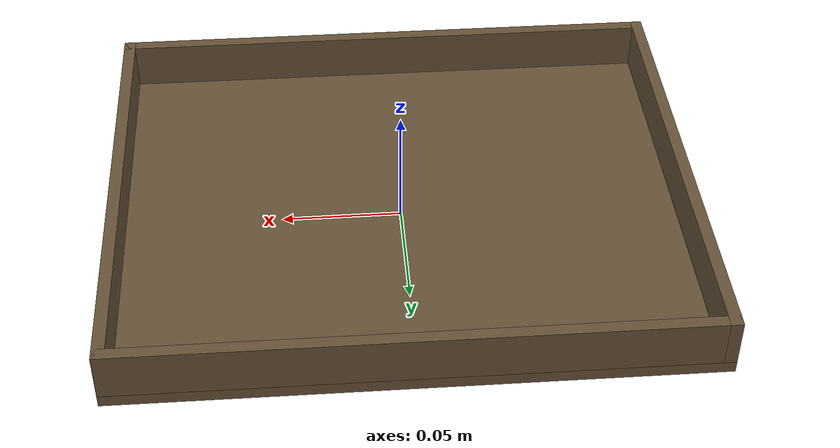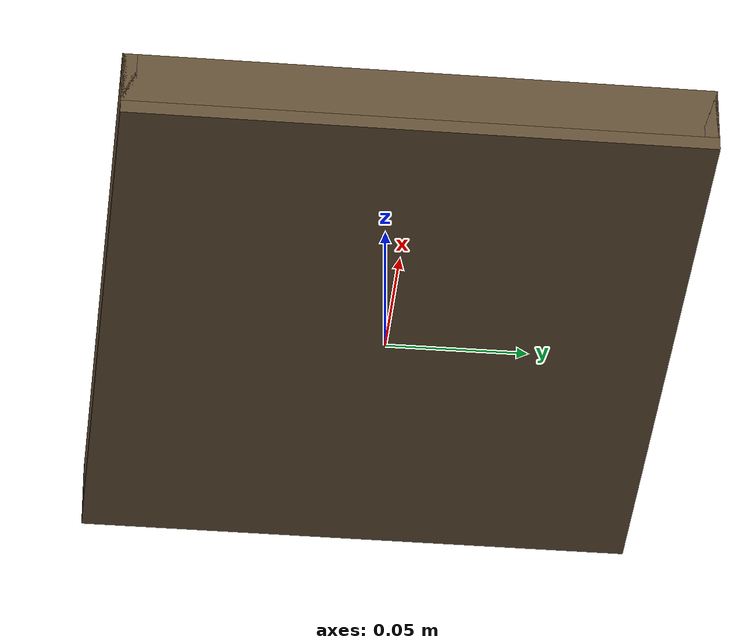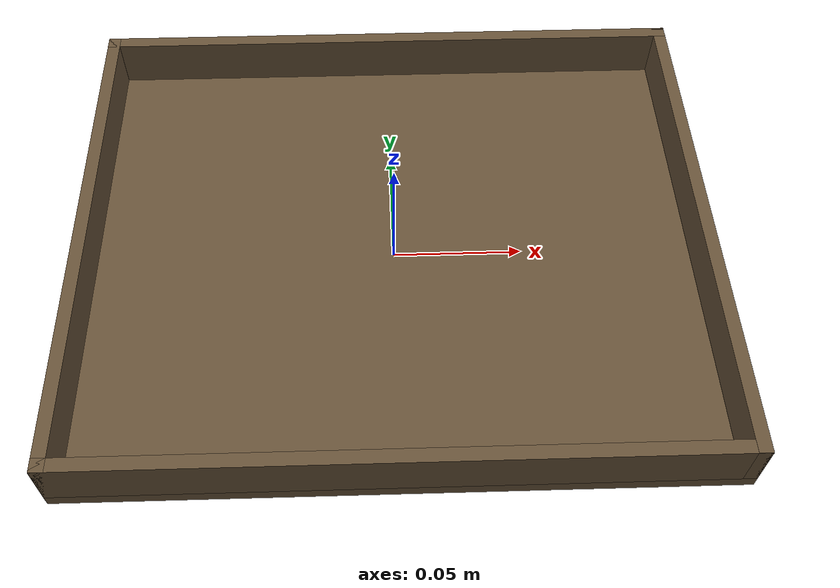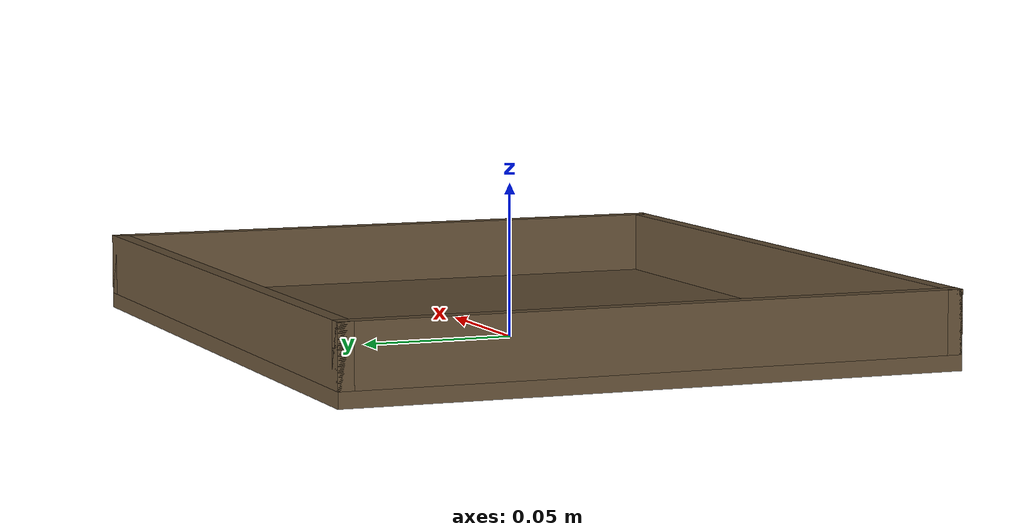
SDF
<?xml version="1.0" ?>
<sdf version="1.8">
  <model name="bolt_bin">
    <static>true</static>
    <link name="bin">
      <!-- 바닥: 0.24 x 0.20 x 0.005, 중심 z=0.0025 -->
      <collision name="floor_collision">
        <pose>0 0 0.0025 0 0 0</pose>
        <geometry>
          <box><size>0.24 0.20 0.005</size></box>
        </geometry>
      </collision>
      <visual name="floor_visual">
        <pose>0 0 0.0025 0 0 0</pose>
        <geometry>
          <box><size>0.24 0.20 0.005</size></box>
        </geometry>
        <material>
          <ambient>0.25 0.20 0.15 1</ambient>
          <diffuse>0.40 0.32 0.22 1</diffuse>
        </material>
      </visual>

      <!-- +X 벽: 두께 0.005, 높이 0.020, 중심 x=0.1175 z=0.015 -->
      <collision name="wall_px_collision">
        <pose>0.1175 0 0.015 0 0 0</pose>
        <geometry>
          <box><size>0.005 0.20 0.020</size></box>
        </geometry>
      </collision>
      <visual name="wall_px_visual">
        <pose>0.1175 0 0.015 0 0 0</pose>
        <geometry>
          <box><size>0.005 0.20 0.020</size></box>
        </geometry>
        <material>
          <ambient>0.25 0.20 0.15 1</ambient>
          <diffuse>0.40 0.32 0.22 1</diffuse>
        </material>
      </visual>

      <collision name="wall_nx_collision">
        <pose>-0.1175 0 0.015 0 0 0</pose>
        <geometry>
          <box><size>0.005 0.20 0.020</size></box>
        </geometry>
      </collision>
      <visual name="wall_nx_visual">
        <pose>-0.1175 0 0.015 0 0 0</pose>
        <geometry>
          <box><size>0.005 0.20 0.020</size></box>
        </geometry>
        <material>
          <ambient>0.25 0.20 0.15 1</ambient>
          <diffuse>0.40 0.32 0.22 1</diffuse>
        </material>
      </visual>

      <!-- +Y 벽: 0.24 x 0.005 x 0.020, 중심 y=0.0975 z=0.015 -->
      <collision name="wall_py_collision">
        <pose>0 0.0975 0.015 0 0 0</pose>
        <geometry>
          <box><size>0.24 0.005 0.020</size></box>
        </geometry>
      </collision>
      <visual name="wall_py_visual">
        <pose>0 0.0975 0.015 0 0 0</pose>
        <geometry>
          <box><size>0.24 0.005 0.020</size></box>
        </geometry>
        <material>
          <ambient>0.25 0.20 0.15 1</ambient>
          <diffuse>0.40 0.32 0.22 1</diffuse>
        </material>
      </visual>

      <collision name="wall_ny_collision">
        <pose>0 -0.0975 0.015 0 0 0</pose>
        <geometry>
          <box><size>0.24 0.005 0.020</size></box>
        </geometry>
      </collision>
      <visual name="wall_ny_visual">
        <pose>0 -0.0975 0.015 0 0 0</pose>
        <geometry>
          <box><size>0.24 0.005 0.020</size></box>
        </geometry>
        <material>
          <ambient>0.25 0.20 0.15 1</ambient>
          <diffuse>0.40 0.32 0.22 1</diffuse>
        </material>
      </visual>
    </link>
  </model>
</sdf>
